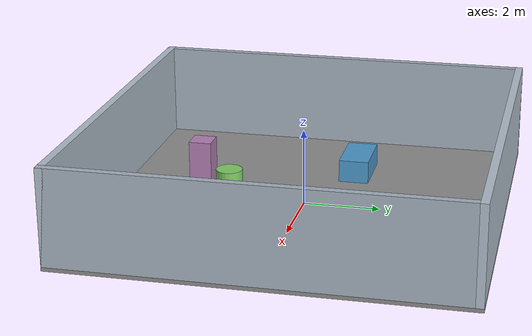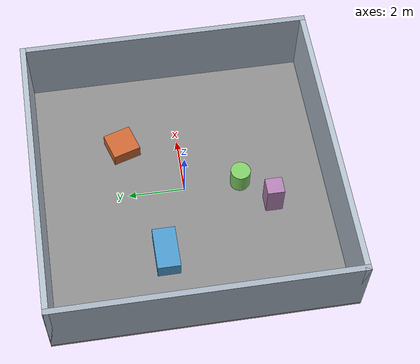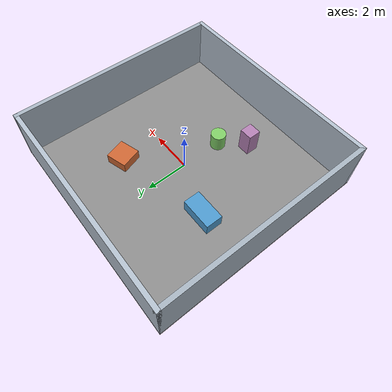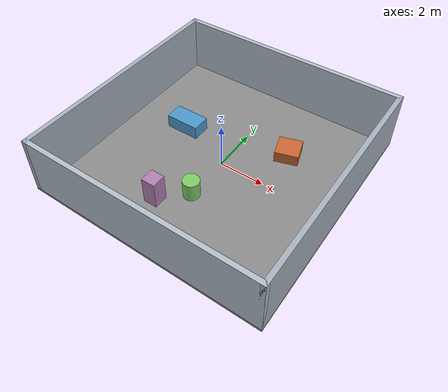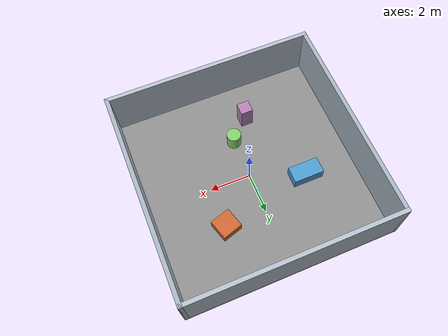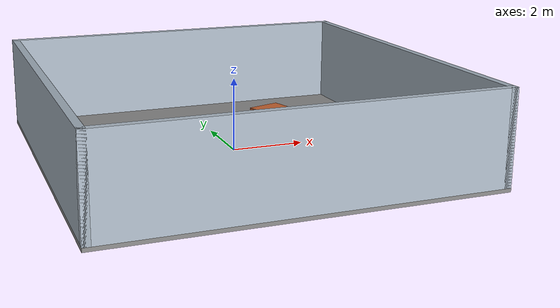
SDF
<?xml version="1.0" ?>
<sdf version="1.8">
  <world name="test_room">
    <physics name="1ms" type="ode">
      <max_step_size>0.001</max_step_size>
      <real_time_factor>1.0</real_time_factor>
      <real_time_update_rate>1000</real_time_update_rate>
    </physics>
    <plugin filename="gz-sim-physics-system" name="gz::sim::systems::Physics"/>
    <plugin filename="gz-sim-user-commands-system" name="gz::sim::systems::UserCommands"/>
    <plugin filename="gz-sim-scene-broadcaster-system" name="gz::sim::systems::SceneBroadcaster"/>
    <plugin filename="ignition-gazebo-imu-system" name="gz::sim::systems::Imu"/>
    <plugin filename="gz-sim-sensors-system" name="gz::sim::systems::Sensors">
      <render_engine>ogre2</render_engine>
    </plugin>

    <gui fullscreen="0">
      <camera name="user_camera">
        <pose>0 -6 3 0 0.4 1.57</pose>
      </camera>
    </gui>

    <light type="directional" name="sun">
      <cast_shadows>true</cast_shadows>
      <pose>0 0 8 0 0 0</pose>
      <diffuse>0.85 0.85 0.85 1</diffuse>
      <specular>0.2 0.2 0.2 1</specular>
      <direction>-0.4 0.2 -0.9</direction>
    </light>

    <!-- 10m x 10m enclosed room with simple obstacles -->
    <model name="test_room_enclosure">
      <static>true</static>
      <link name="floor">
        <pose>0 0 -0.05 0 0 0</pose>
        <collision name="floor_collision">
          <geometry><box><size>10.4 10.4 0.1</size></box></geometry>
        </collision>
        <visual name="floor_visual">
          <geometry><box><size>10.4 10.4 0.1</size></box></geometry>
          <material>
            <ambient>0.55 0.55 0.55 1</ambient>
            <diffuse>0.55 0.55 0.55 1</diffuse>
          </material>
        </visual>
      </link>
      <link name="north_wall">
        <pose>0 5.1 1.25 0 0 0</pose>
        <collision name="north_wall_collision">
          <geometry><box><size>10.4 0.2 2.5</size></box></geometry>
        </collision>
        <visual name="north_wall_visual">
          <geometry><box><size>10.4 0.2 2.5</size></box></geometry>
          <material>
            <ambient>0.7 0.75 0.8 1</ambient>
            <diffuse>0.7 0.75 0.8 1</diffuse>
          </material>
        </visual>
      </link>
      <link name="south_wall">
        <pose>0 -5.1 1.25 0 0 0</pose>
        <collision name="south_wall_collision">
          <geometry><box><size>10.4 0.2 2.5</size></box></geometry>
        </collision>
        <visual name="south_wall_visual">
          <geometry><box><size>10.4 0.2 2.5</size></box></geometry>
          <material>
            <ambient>0.7 0.75 0.8 1</ambient>
            <diffuse>0.7 0.75 0.8 1</diffuse>
          </material>
        </visual>
      </link>
      <link name="east_wall">
        <pose>5.1 0 1.25 0 0 0</pose>
        <collision name="east_wall_collision">
          <geometry><box><size>0.2 10.4 2.5</size></box></geometry>
        </collision>
        <visual name="east_wall_visual">
          <geometry><box><size>0.2 10.4 2.5</size></box></geometry>
          <material>
            <ambient>0.65 0.7 0.75 1</ambient>
            <diffuse>0.65 0.7 0.75 1</diffuse>
          </material>
        </visual>
      </link>
      <link name="west_wall">
        <pose>-5.1 0 1.25 0 0 0</pose>
        <collision name="west_wall_collision">
          <geometry><box><size>0.2 10.4 2.5</size></box></geometry>
        </collision>
        <visual name="west_wall_visual">
          <geometry><box><size>0.2 10.4 2.5</size></box></geometry>
          <material>
            <ambient>0.65 0.7 0.75 1</ambient>
            <diffuse>0.65 0.7 0.75 1</diffuse>
          </material>
        </visual>
      </link>
    </model>

    <model name="obstacle_box_1">
      <static>true</static>
      <pose>2.0 2.0 0.25 0 0 0.3</pose>
      <link name="link">
        <collision name="collision">
          <geometry><box><size>1.0 1.0 0.5</size></box></geometry>
        </collision>
        <visual name="visual">
          <geometry><box><size>1.0 1.0 0.5</size></box></geometry>
          <material>
            <ambient>0.8 0.4 0.2 1</ambient>
            <diffuse>0.8 0.4 0.2 1</diffuse>
          </material>
        </visual>
      </link>
    </model>

    <model name="obstacle_box_2">
      <static>true</static>
      <pose>-2.5 1.0 0.3 0 0 0</pose>
      <link name="link">
        <collision name="collision">
          <geometry><box><size>1.5 0.8 0.6</size></box></geometry>
        </collision>
        <visual name="visual">
          <geometry><box><size>1.5 0.8 0.6</size></box></geometry>
          <material>
            <ambient>0.3 0.6 0.8 1</ambient>
            <diffuse>0.3 0.6 0.8 1</diffuse>
          </material>
        </visual>
      </link>
    </model>

    <model name="obstacle_pillar">
      <static>true</static>
      <pose>0.0 -2.0 0.4 0 0 0</pose>
      <link name="link">
        <collision name="collision">
          <geometry><cylinder><radius>0.35</radius><length>0.8</length></cylinder></geometry>
        </collision>
        <visual name="visual">
          <geometry><cylinder><radius>0.35</radius><length>0.8</length></cylinder></geometry>
          <material>
            <ambient>0.5 0.8 0.4 1</ambient>
            <diffuse>0.5 0.8 0.4 1</diffuse>
          </material>
        </visual>
      </link>
    </model>

    <model name="obstacle_box_3">
      <static>true</static>
      <pose>-1.0 -3.0 0.6 0 0 0</pose>
      <link name="link">
        <collision name="collision">
          <geometry><box><size>0.6 0.6 1.2</size></box></geometry>
        </collision>
        <visual name="visual">
          <geometry><box><size>0.6 0.6 1.2</size></box></geometry>
          <material>
            <ambient>0.7 0.5 0.7 1</ambient>
            <diffuse>0.7 0.5 0.7 1</diffuse>
          </material>
        </visual>
      </link>
    </model>
  </world>
</sdf>
